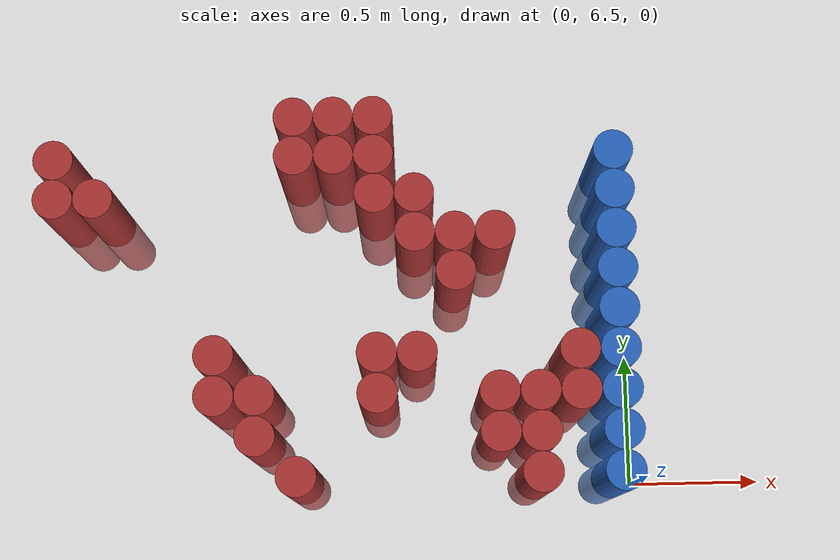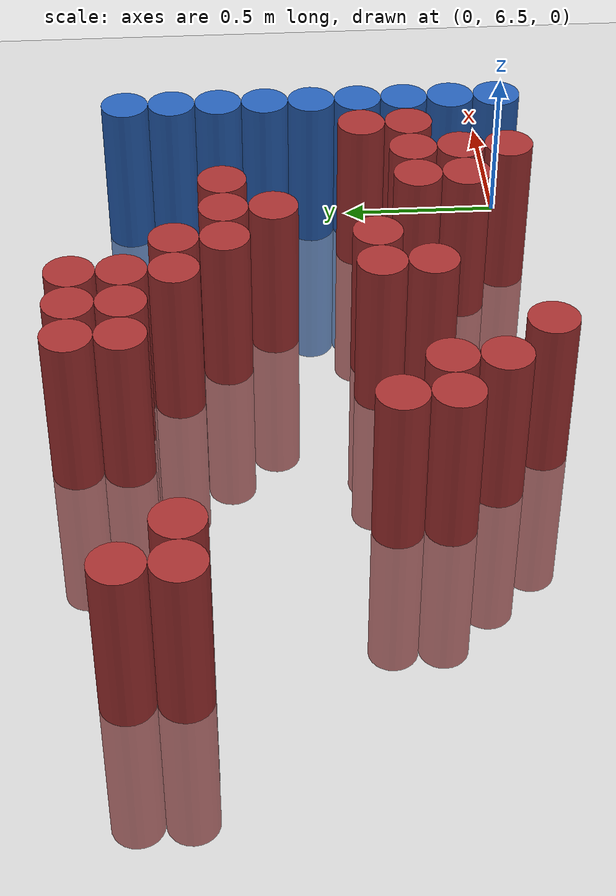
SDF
<sdf version="1.6">
 <world name="default">
  <model name="ground_plane">
   <static>1</static>
   <link name="link">
    <collision name="collision">
     <geometry><plane><normal>0 0 1</normal><size>100 100</size></plane></geometry>
     <surface><friction><ode><mu>100</mu><mu2>50</mu2></ode></friction></surface>
    </collision>
    <visual name="visual">
     <cast_shadows>0</cast_shadows>
     <geometry><plane><normal>0 0 1</normal><size>100 100</size></plane></geometry>
     <material>
      <script><uri>file://media/materials/scripts/gazebo.material</uri><name>Gazebo/Grey</name></script>
     </material>
    </visual>
   </link>
  </model>
  <model name="unit_cylinder_209">
   <static>1</static>
   <pose>-2.175000 7.575000 0.000000 0.000000 0.000000 0.000000</pose>
   <link name="link">
    <inertial>
     <mass>1</mass>
     <inertia><ixx>0.145833</ixx><ixy>0</ixy><ixz>0</ixz><iyy>0.145833</iyy><iyz>0</iyz><izz>0.125</izz></inertia>
    </inertial>
    <collision name="collision">
     <geometry><cylinder><radius>0.075000</radius><length>1</length></cylinder></geometry>
    </collision>
    <visual name="visual">
     <geometry><cylinder><radius>0.075000</radius><length>1</length></cylinder></geometry>
     <material>
      <ambient>0.648000 0.192000 0.192000 1</ambient>
      <diffuse>0.648000 0.192000 0.192000 1</diffuse>
     </material>
     <material>
      <script><name>Gazebo/Grey</name><uri>file://media/materials/scripts/gazebo.material</uri></script>
     </material>
    </visual>
    <sensor name="sensor_contact" type="contact"><contact><collision>collision</collision></contact></sensor>
   </link>
   <plugin filename="gz-sim-touchplugin-system" name="gz::sim::systems::TouchPlugin">
    <target>robot</target>
    <namespace>robot</namespace>
    <time>0.001</time>
    <enabled>true</enabled>
   </plugin>
  </model>
  <model name="unit_cylinder_210">
   <static>1</static>
   <pose>-2.175000 7.725000 0.000000 0.000000 0.000000 0.000000</pose>
   <link name="link">
    <inertial>
     <mass>1</mass>
     <inertia><ixx>0.145833</ixx><ixy>0</ixy><ixz>0</ixz><iyy>0.145833</iyy><iyz>0</iyz><izz>0.125</izz></inertia>
    </inertial>
    <collision name="collision">
     <geometry><cylinder><radius>0.075000</radius><length>1</length></cylinder></geometry>
    </collision>
    <visual name="visual">
     <geometry><cylinder><radius>0.075000</radius><length>1</length></cylinder></geometry>
     <material>
      <ambient>0.648000 0.192000 0.192000 1</ambient>
      <diffuse>0.648000 0.192000 0.192000 1</diffuse>
     </material>
     <material>
      <script><name>Gazebo/Grey</name><uri>file://media/materials/scripts/gazebo.material</uri></script>
     </material>
    </visual>
    <sensor name="sensor_contact" type="contact"><contact><collision>collision</collision></contact></sensor>
   </link>
   <plugin filename="gz-sim-touchplugin-system" name="gz::sim::systems::TouchPlugin">
    <target>robot</target>
    <namespace>robot</namespace>
    <time>0.001</time>
    <enabled>true</enabled>
   </plugin>
  </model>
  <model name="unit_cylinder_220">
   <static>1</static>
   <pose>-2.025000 7.575000 0.000000 0.000000 0.000000 0.000000</pose>
   <link name="link">
    <inertial>
     <mass>1</mass>
     <inertia><ixx>0.145833</ixx><ixy>0</ixy><ixz>0</ixz><iyy>0.145833</iyy><iyz>0</iyz><izz>0.125</izz></inertia>
    </inertial>
    <collision name="collision">
     <geometry><cylinder><radius>0.075000</radius><length>1</length></cylinder></geometry>
    </collision>
    <visual name="visual">
     <geometry><cylinder><radius>0.075000</radius><length>1</length></cylinder></geometry>
     <material>
      <ambient>0.648000 0.192000 0.192000 1</ambient>
      <diffuse>0.648000 0.192000 0.192000 1</diffuse>
     </material>
     <material>
      <script><name>Gazebo/Grey</name><uri>file://media/materials/scripts/gazebo.material</uri></script>
     </material>
    </visual>
    <sensor name="sensor_contact" type="contact"><contact><collision>collision</collision></contact></sensor>
   </link>
   <plugin filename="gz-sim-touchplugin-system" name="gz::sim::systems::TouchPlugin">
    <target>robot</target>
    <namespace>robot</namespace>
    <time>0.001</time>
    <enabled>true</enabled>
   </plugin>
  </model>
  <model name="unit_cylinder_223">
   <static>1</static>
   <pose>-1.575000 6.825000 0.000000 0.000000 0.000000 0.000000</pose>
   <link name="link">
    <inertial>
     <mass>1</mass>
     <inertia><ixx>0.145833</ixx><ixy>0</ixy><ixz>0</ixz><iyy>0.145833</iyy><iyz>0</iyz><izz>0.125</izz></inertia>
    </inertial>
    <collision name="collision">
     <geometry><cylinder><radius>0.075000</radius><length>1</length></cylinder></geometry>
    </collision>
    <visual name="visual">
     <geometry><cylinder><radius>0.075000</radius><length>1</length></cylinder></geometry>
     <material>
      <ambient>0.648000 0.192000 0.192000 1</ambient>
      <diffuse>0.648000 0.192000 0.192000 1</diffuse>
     </material>
     <material>
      <script><name>Gazebo/Grey</name><uri>file://media/materials/scripts/gazebo.material</uri></script>
     </material>
    </visual>
    <sensor name="sensor_contact" type="contact"><contact><collision>collision</collision></contact></sensor>
   </link>
   <plugin filename="gz-sim-touchplugin-system" name="gz::sim::systems::TouchPlugin">
    <target>robot</target>
    <namespace>robot</namespace>
    <time>0.001</time>
    <enabled>true</enabled>
   </plugin>
  </model>
  <model name="unit_cylinder_224">
   <static>1</static>
   <pose>-1.575000 6.975000 0.000000 0.000000 0.000000 0.000000</pose>
   <link name="link">
    <inertial>
     <mass>1</mass>
     <inertia><ixx>0.145833</ixx><ixy>0</ixy><ixz>0</ixz><iyy>0.145833</iyy><iyz>0</iyz><izz>0.125</izz></inertia>
    </inertial>
    <collision name="collision">
     <geometry><cylinder><radius>0.075000</radius><length>1</length></cylinder></geometry>
    </collision>
    <visual name="visual">
     <geometry><cylinder><radius>0.075000</radius><length>1</length></cylinder></geometry>
     <material>
      <ambient>0.648000 0.192000 0.192000 1</ambient>
      <diffuse>0.648000 0.192000 0.192000 1</diffuse>
     </material>
     <material>
      <script><name>Gazebo/Grey</name><uri>file://media/materials/scripts/gazebo.material</uri></script>
     </material>
    </visual>
    <sensor name="sensor_contact" type="contact"><contact><collision>collision</collision></contact></sensor>
   </link>
   <plugin filename="gz-sim-touchplugin-system" name="gz::sim::systems::TouchPlugin">
    <target>robot</target>
    <namespace>robot</namespace>
    <time>0.001</time>
    <enabled>true</enabled>
   </plugin>
  </model>
  <model name="unit_cylinder_227">
   <static>1</static>
   <pose>-1.425000 6.675000 0.000000 0.000000 0.000000 0.000000</pose>
   <link name="link">
    <inertial>
     <mass>1</mass>
     <inertia><ixx>0.145833</ixx><ixy>0</ixy><ixz>0</ixz><iyy>0.145833</iyy><iyz>0</iyz><izz>0.125</izz></inertia>
    </inertial>
    <collision name="collision">
     <geometry><cylinder><radius>0.075000</radius><length>1</length></cylinder></geometry>
    </collision>
    <visual name="visual">
     <geometry><cylinder><radius>0.075000</radius><length>1</length></cylinder></geometry>
     <material>
      <ambient>0.648000 0.192000 0.192000 1</ambient>
      <diffuse>0.648000 0.192000 0.192000 1</diffuse>
     </material>
     <material>
      <script><name>Gazebo/Grey</name><uri>file://media/materials/scripts/gazebo.material</uri></script>
     </material>
    </visual>
    <sensor name="sensor_contact" type="contact"><contact><collision>collision</collision></contact></sensor>
   </link>
   <plugin filename="gz-sim-touchplugin-system" name="gz::sim::systems::TouchPlugin">
    <target>robot</target>
    <namespace>robot</namespace>
    <time>0.001</time>
    <enabled>true</enabled>
   </plugin>
  </model>
  <model name="unit_cylinder_228">
   <static>1</static>
   <pose>-1.425000 6.825000 0.000000 0.000000 0.000000 0.000000</pose>
   <link name="link">
    <inertial>
     <mass>1</mass>
     <inertia><ixx>0.145833</ixx><ixy>0</ixy><ixz>0</ixz><iyy>0.145833</iyy><iyz>0</iyz><izz>0.125</izz></inertia>
    </inertial>
    <collision name="collision">
     <geometry><cylinder><radius>0.075000</radius><length>1</length></cylinder></geometry>
    </collision>
    <visual name="visual">
     <geometry><cylinder><radius>0.075000</radius><length>1</length></cylinder></geometry>
     <material>
      <ambient>0.648000 0.192000 0.192000 1</ambient>
      <diffuse>0.648000 0.192000 0.192000 1</diffuse>
     </material>
     <material>
      <script><name>Gazebo/Grey</name><uri>file://media/materials/scripts/gazebo.material</uri></script>
     </material>
    </visual>
    <sensor name="sensor_contact" type="contact"><contact><collision>collision</collision></contact></sensor>
   </link>
   <plugin filename="gz-sim-touchplugin-system" name="gz::sim::systems::TouchPlugin">
    <target>robot</target>
    <namespace>robot</namespace>
    <time>0.001</time>
    <enabled>true</enabled>
   </plugin>
  </model>
  <model name="unit_cylinder_232">
   <static>1</static>
   <pose>-1.275000 6.525000 0.000000 0.000000 0.000000 0.000000</pose>
   <link name="link">
    <inertial>
     <mass>1</mass>
     <inertia><ixx>0.145833</ixx><ixy>0</ixy><ixz>0</ixz><iyy>0.145833</iyy><iyz>0</iyz><izz>0.125</izz></inertia>
    </inertial>
    <collision name="collision">
     <geometry><cylinder><radius>0.075000</radius><length>1</length></cylinder></geometry>
    </collision>
    <visual name="visual">
     <geometry><cylinder><radius>0.075000</radius><length>1</length></cylinder></geometry>
     <material>
      <ambient>0.648000 0.192000 0.192000 1</ambient>
      <diffuse>0.648000 0.192000 0.192000 1</diffuse>
     </material>
     <material>
      <script><name>Gazebo/Grey</name><uri>file://media/materials/scripts/gazebo.material</uri></script>
     </material>
    </visual>
    <sensor name="sensor_contact" type="contact"><contact><collision>collision</collision></contact></sensor>
   </link>
   <plugin filename="gz-sim-touchplugin-system" name="gz::sim::systems::TouchPlugin">
    <target>robot</target>
    <namespace>robot</namespace>
    <time>0.001</time>
    <enabled>true</enabled>
   </plugin>
  </model>
  <model name="unit_cylinder_233">
   <static>1</static>
   <pose>-1.275000 7.725000 0.000000 0.000000 0.000000 0.000000</pose>
   <link name="link">
    <inertial>
     <mass>1</mass>
     <inertia><ixx>0.145833</ixx><ixy>0</ixy><ixz>0</ixz><iyy>0.145833</iyy><iyz>0</iyz><izz>0.125</izz></inertia>
    </inertial>
    <collision name="collision">
     <geometry><cylinder><radius>0.075000</radius><length>1</length></cylinder></geometry>
    </collision>
    <visual name="visual">
     <geometry><cylinder><radius>0.075000</radius><length>1</length></cylinder></geometry>
     <material>
      <ambient>0.648000 0.192000 0.192000 1</ambient>
      <diffuse>0.648000 0.192000 0.192000 1</diffuse>
     </material>
     <material>
      <script><name>Gazebo/Grey</name><uri>file://media/materials/scripts/gazebo.material</uri></script>
     </material>
    </visual>
    <sensor name="sensor_contact" type="contact"><contact><collision>collision</collision></contact></sensor>
   </link>
   <plugin filename="gz-sim-touchplugin-system" name="gz::sim::systems::TouchPlugin">
    <target>robot</target>
    <namespace>robot</namespace>
    <time>0.001</time>
    <enabled>true</enabled>
   </plugin>
  </model>
  <model name="unit_cylinder_234">
   <static>1</static>
   <pose>-1.275000 7.875000 0.000000 0.000000 0.000000 0.000000</pose>
   <link name="link">
    <inertial>
     <mass>1</mass>
     <inertia><ixx>0.145833</ixx><ixy>0</ixy><ixz>0</ixz><iyy>0.145833</iyy><iyz>0</iyz><izz>0.125</izz></inertia>
    </inertial>
    <collision name="collision">
     <geometry><cylinder><radius>0.075000</radius><length>1</length></cylinder></geometry>
    </collision>
    <visual name="visual">
     <geometry><cylinder><radius>0.075000</radius><length>1</length></cylinder></geometry>
     <material>
      <ambient>0.648000 0.192000 0.192000 1</ambient>
      <diffuse>0.648000 0.192000 0.192000 1</diffuse>
     </material>
     <material>
      <script><name>Gazebo/Grey</name><uri>file://media/materials/scripts/gazebo.material</uri></script>
     </material>
    </visual>
    <sensor name="sensor_contact" type="contact"><contact><collision>collision</collision></contact></sensor>
   </link>
   <plugin filename="gz-sim-touchplugin-system" name="gz::sim::systems::TouchPlugin">
    <target>robot</target>
    <namespace>robot</namespace>
    <time>0.001</time>
    <enabled>true</enabled>
   </plugin>
  </model>
  <model name="unit_cylinder_242">
   <static>1</static>
   <pose>-1.125000 7.725000 0.000000 0.000000 0.000000 0.000000</pose>
   <link name="link">
    <inertial>
     <mass>1</mass>
     <inertia><ixx>0.145833</ixx><ixy>0</ixy><ixz>0</ixz><iyy>0.145833</iyy><iyz>0</iyz><izz>0.125</izz></inertia>
    </inertial>
    <collision name="collision">
     <geometry><cylinder><radius>0.075000</radius><length>1</length></cylinder></geometry>
    </collision>
    <visual name="visual">
     <geometry><cylinder><radius>0.075000</radius><length>1</length></cylinder></geometry>
     <material>
      <ambient>0.648000 0.192000 0.192000 1</ambient>
      <diffuse>0.648000 0.192000 0.192000 1</diffuse>
     </material>
     <material>
      <script><name>Gazebo/Grey</name><uri>file://media/materials/scripts/gazebo.material</uri></script>
     </material>
    </visual>
    <sensor name="sensor_contact" type="contact"><contact><collision>collision</collision></contact></sensor>
   </link>
   <plugin filename="gz-sim-touchplugin-system" name="gz::sim::systems::TouchPlugin">
    <target>robot</target>
    <namespace>robot</namespace>
    <time>0.001</time>
    <enabled>true</enabled>
   </plugin>
  </model>
  <model name="unit_cylinder_243">
   <static>1</static>
   <pose>-1.125000 7.875000 0.000000 0.000000 0.000000 0.000000</pose>
   <link name="link">
    <inertial>
     <mass>1</mass>
     <inertia><ixx>0.145833</ixx><ixy>0</ixy><ixz>0</ixz><iyy>0.145833</iyy><iyz>0</iyz><izz>0.125</izz></inertia>
    </inertial>
    <collision name="collision">
     <geometry><cylinder><radius>0.075000</radius><length>1</length></cylinder></geometry>
    </collision>
    <visual name="visual">
     <geometry><cylinder><radius>0.075000</radius><length>1</length></cylinder></geometry>
     <material>
      <ambient>0.648000 0.192000 0.192000 1</ambient>
      <diffuse>0.648000 0.192000 0.192000 1</diffuse>
     </material>
     <material>
      <script><name>Gazebo/Grey</name><uri>file://media/materials/scripts/gazebo.material</uri></script>
     </material>
    </visual>
    <sensor name="sensor_contact" type="contact"><contact><collision>collision</collision></contact></sensor>
   </link>
   <plugin filename="gz-sim-touchplugin-system" name="gz::sim::systems::TouchPlugin">
    <target>robot</target>
    <namespace>robot</namespace>
    <time>0.001</time>
    <enabled>true</enabled>
   </plugin>
  </model>
  <model name="unit_cylinder_247">
   <static>1</static>
   <pose>-0.975000 6.825000 0.000000 0.000000 0.000000 0.000000</pose>
   <link name="link">
    <inertial>
     <mass>1</mass>
     <inertia><ixx>0.145833</ixx><ixy>0</ixy><ixz>0</ixz><iyy>0.145833</iyy><iyz>0</iyz><izz>0.125</izz></inertia>
    </inertial>
    <collision name="collision">
     <geometry><cylinder><radius>0.075000</radius><length>1</length></cylinder></geometry>
    </collision>
    <visual name="visual">
     <geometry><cylinder><radius>0.075000</radius><length>1</length></cylinder></geometry>
     <material>
      <ambient>0.648000 0.192000 0.192000 1</ambient>
      <diffuse>0.648000 0.192000 0.192000 1</diffuse>
     </material>
     <material>
      <script><name>Gazebo/Grey</name><uri>file://media/materials/scripts/gazebo.material</uri></script>
     </material>
    </visual>
    <sensor name="sensor_contact" type="contact"><contact><collision>collision</collision></contact></sensor>
   </link>
   <plugin filename="gz-sim-touchplugin-system" name="gz::sim::systems::TouchPlugin">
    <target>robot</target>
    <namespace>robot</namespace>
    <time>0.001</time>
    <enabled>true</enabled>
   </plugin>
  </model>
  <model name="unit_cylinder_248">
   <static>1</static>
   <pose>-0.975000 6.975000 0.000000 0.000000 0.000000 0.000000</pose>
   <link name="link">
    <inertial>
     <mass>1</mass>
     <inertia><ixx>0.145833</ixx><ixy>0</ixy><ixz>0</ixz><iyy>0.145833</iyy><iyz>0</iyz><izz>0.125</izz></inertia>
    </inertial>
    <collision name="collision">
     <geometry><cylinder><radius>0.075000</radius><length>1</length></cylinder></geometry>
    </collision>
    <visual name="visual">
     <geometry><cylinder><radius>0.075000</radius><length>1</length></cylinder></geometry>
     <material>
      <ambient>0.648000 0.192000 0.192000 1</ambient>
      <diffuse>0.648000 0.192000 0.192000 1</diffuse>
     </material>
     <material>
      <script><name>Gazebo/Grey</name><uri>file://media/materials/scripts/gazebo.material</uri></script>
     </material>
    </visual>
    <sensor name="sensor_contact" type="contact"><contact><collision>collision</collision></contact></sensor>
   </link>
   <plugin filename="gz-sim-touchplugin-system" name="gz::sim::systems::TouchPlugin">
    <target>robot</target>
    <namespace>robot</namespace>
    <time>0.001</time>
    <enabled>true</enabled>
   </plugin>
  </model>
  <model name="unit_cylinder_249">
   <static>1</static>
   <pose>-0.975000 7.575000 0.000000 0.000000 0.000000 0.000000</pose>
   <link name="link">
    <inertial>
     <mass>1</mass>
     <inertia><ixx>0.145833</ixx><ixy>0</ixy><ixz>0</ixz><iyy>0.145833</iyy><iyz>0</iyz><izz>0.125</izz></inertia>
    </inertial>
    <collision name="collision">
     <geometry><cylinder><radius>0.075000</radius><length>1</length></cylinder></geometry>
    </collision>
    <visual name="visual">
     <geometry><cylinder><radius>0.075000</radius><length>1</length></cylinder></geometry>
     <material>
      <ambient>0.648000 0.192000 0.192000 1</ambient>
      <diffuse>0.648000 0.192000 0.192000 1</diffuse>
     </material>
     <material>
      <script><name>Gazebo/Grey</name><uri>file://media/materials/scripts/gazebo.material</uri></script>
     </material>
    </visual>
    <sensor name="sensor_contact" type="contact"><contact><collision>collision</collision></contact></sensor>
   </link>
   <plugin filename="gz-sim-touchplugin-system" name="gz::sim::systems::TouchPlugin">
    <target>robot</target>
    <namespace>robot</namespace>
    <time>0.001</time>
    <enabled>true</enabled>
   </plugin>
  </model>
  <model name="unit_cylinder_250">
   <static>1</static>
   <pose>-0.975000 7.725000 0.000000 0.000000 0.000000 0.000000</pose>
   <link name="link">
    <inertial>
     <mass>1</mass>
     <inertia><ixx>0.145833</ixx><ixy>0</ixy><ixz>0</ixz><iyy>0.145833</iyy><iyz>0</iyz><izz>0.125</izz></inertia>
    </inertial>
    <collision name="collision">
     <geometry><cylinder><radius>0.075000</radius><length>1</length></cylinder></geometry>
    </collision>
    <visual name="visual">
     <geometry><cylinder><radius>0.075000</radius><length>1</length></cylinder></geometry>
     <material>
      <ambient>0.648000 0.192000 0.192000 1</ambient>
      <diffuse>0.648000 0.192000 0.192000 1</diffuse>
     </material>
     <material>
      <script><name>Gazebo/Grey</name><uri>file://media/materials/scripts/gazebo.material</uri></script>
     </material>
    </visual>
    <sensor name="sensor_contact" type="contact"><contact><collision>collision</collision></contact></sensor>
   </link>
   <plugin filename="gz-sim-touchplugin-system" name="gz::sim::systems::TouchPlugin">
    <target>robot</target>
    <namespace>robot</namespace>
    <time>0.001</time>
    <enabled>true</enabled>
   </plugin>
  </model>
  <model name="unit_cylinder_251">
   <static>1</static>
   <pose>-0.975000 7.875000 0.000000 0.000000 0.000000 0.000000</pose>
   <link name="link">
    <inertial>
     <mass>1</mass>
     <inertia><ixx>0.145833</ixx><ixy>0</ixy><ixz>0</ixz><iyy>0.145833</iyy><iyz>0</iyz><izz>0.125</izz></inertia>
    </inertial>
    <collision name="collision">
     <geometry><cylinder><radius>0.075000</radius><length>1</length></cylinder></geometry>
    </collision>
    <visual name="visual">
     <geometry><cylinder><radius>0.075000</radius><length>1</length></cylinder></geometry>
     <material>
      <ambient>0.648000 0.192000 0.192000 1</ambient>
      <diffuse>0.648000 0.192000 0.192000 1</diffuse>
     </material>
     <material>
      <script><name>Gazebo/Grey</name><uri>file://media/materials/scripts/gazebo.material</uri></script>
     </material>
    </visual>
    <sensor name="sensor_contact" type="contact"><contact><collision>collision</collision></contact></sensor>
   </link>
   <plugin filename="gz-sim-touchplugin-system" name="gz::sim::systems::TouchPlugin">
    <target>robot</target>
    <namespace>robot</namespace>
    <time>0.001</time>
    <enabled>true</enabled>
   </plugin>
  </model>
  <model name="unit_cylinder_252">
   <static>1</static>
   <pose>-0.825000 6.975000 0.000000 0.000000 0.000000 0.000000</pose>
   <link name="link">
    <inertial>
     <mass>1</mass>
     <inertia><ixx>0.145833</ixx><ixy>0</ixy><ixz>0</ixz><iyy>0.145833</iyy><iyz>0</iyz><izz>0.125</izz></inertia>
    </inertial>
    <collision name="collision">
     <geometry><cylinder><radius>0.075000</radius><length>1</length></cylinder></geometry>
    </collision>
    <visual name="visual">
     <geometry><cylinder><radius>0.075000</radius><length>1</length></cylinder></geometry>
     <material>
      <ambient>0.648000 0.192000 0.192000 1</ambient>
      <diffuse>0.648000 0.192000 0.192000 1</diffuse>
     </material>
     <material>
      <script><name>Gazebo/Grey</name><uri>file://media/materials/scripts/gazebo.material</uri></script>
     </material>
    </visual>
    <sensor name="sensor_contact" type="contact"><contact><collision>collision</collision></contact></sensor>
   </link>
   <plugin filename="gz-sim-touchplugin-system" name="gz::sim::systems::TouchPlugin">
    <target>robot</target>
    <namespace>robot</namespace>
    <time>0.001</time>
    <enabled>true</enabled>
   </plugin>
  </model>
  <model name="unit_cylinder_253">
   <static>1</static>
   <pose>-0.825000 7.425000 0.000000 0.000000 0.000000 0.000000</pose>
   <link name="link">
    <inertial>
     <mass>1</mass>
     <inertia><ixx>0.145833</ixx><ixy>0</ixy><ixz>0</ixz><iyy>0.145833</iyy><iyz>0</iyz><izz>0.125</izz></inertia>
    </inertial>
    <collision name="collision">
     <geometry><cylinder><radius>0.075000</radius><length>1</length></cylinder></geometry>
    </collision>
    <visual name="visual">
     <geometry><cylinder><radius>0.075000</radius><length>1</length></cylinder></geometry>
     <material>
      <ambient>0.648000 0.192000 0.192000 1</ambient>
      <diffuse>0.648000 0.192000 0.192000 1</diffuse>
     </material>
     <material>
      <script><name>Gazebo/Grey</name><uri>file://media/materials/scripts/gazebo.material</uri></script>
     </material>
    </visual>
    <sensor name="sensor_contact" type="contact"><contact><collision>collision</collision></contact></sensor>
   </link>
   <plugin filename="gz-sim-touchplugin-system" name="gz::sim::systems::TouchPlugin">
    <target>robot</target>
    <namespace>robot</namespace>
    <time>0.001</time>
    <enabled>true</enabled>
   </plugin>
  </model>
  <model name="unit_cylinder_254">
   <static>1</static>
   <pose>-0.825000 7.575000 0.000000 0.000000 0.000000 0.000000</pose>
   <link name="link">
    <inertial>
     <mass>1</mass>
     <inertia><ixx>0.145833</ixx><ixy>0</ixy><ixz>0</ixz><iyy>0.145833</iyy><iyz>0</iyz><izz>0.125</izz></inertia>
    </inertial>
    <collision name="collision">
     <geometry><cylinder><radius>0.075000</radius><length>1</length></cylinder></geometry>
    </collision>
    <visual name="visual">
     <geometry><cylinder><radius>0.075000</radius><length>1</length></cylinder></geometry>
     <material>
      <ambient>0.648000 0.192000 0.192000 1</ambient>
      <diffuse>0.648000 0.192000 0.192000 1</diffuse>
     </material>
     <material>
      <script><name>Gazebo/Grey</name><uri>file://media/materials/scripts/gazebo.material</uri></script>
     </material>
    </visual>
    <sensor name="sensor_contact" type="contact"><contact><collision>collision</collision></contact></sensor>
   </link>
   <plugin filename="gz-sim-touchplugin-system" name="gz::sim::systems::TouchPlugin">
    <target>robot</target>
    <namespace>robot</namespace>
    <time>0.001</time>
    <enabled>true</enabled>
   </plugin>
  </model>
  <model name="unit_cylinder_255">
   <static>1</static>
   <pose>-0.675000 7.275000 0.000000 0.000000 0.000000 0.000000</pose>
   <link name="link">
    <inertial>
     <mass>1</mass>
     <inertia><ixx>0.145833</ixx><ixy>0</ixy><ixz>0</ixz><iyy>0.145833</iyy><iyz>0</iyz><izz>0.125</izz></inertia>
    </inertial>
    <collision name="collision">
     <geometry><cylinder><radius>0.075000</radius><length>1</length></cylinder></geometry>
    </collision>
    <visual name="visual">
     <geometry><cylinder><radius>0.075000</radius><length>1</length></cylinder></geometry>
     <material>
      <ambient>0.648000 0.192000 0.192000 1</ambient>
      <diffuse>0.648000 0.192000 0.192000 1</diffuse>
     </material>
     <material>
      <script><name>Gazebo/Grey</name><uri>file://media/materials/scripts/gazebo.material</uri></script>
     </material>
    </visual>
    <sensor name="sensor_contact" type="contact"><contact><collision>collision</collision></contact></sensor>
   </link>
   <plugin filename="gz-sim-touchplugin-system" name="gz::sim::systems::TouchPlugin">
    <target>robot</target>
    <namespace>robot</namespace>
    <time>0.001</time>
    <enabled>true</enabled>
   </plugin>
  </model>
  <model name="unit_cylinder_256">
   <static>1</static>
   <pose>-0.675000 7.425000 0.000000 0.000000 0.000000 0.000000</pose>
   <link name="link">
    <inertial>
     <mass>1</mass>
     <inertia><ixx>0.145833</ixx><ixy>0</ixy><ixz>0</ixz><iyy>0.145833</iyy><iyz>0</iyz><izz>0.125</izz></inertia>
    </inertial>
    <collision name="collision">
     <geometry><cylinder><radius>0.075000</radius><length>1</length></cylinder></geometry>
    </collision>
    <visual name="visual">
     <geometry><cylinder><radius>0.075000</radius><length>1</length></cylinder></geometry>
     <material>
      <ambient>0.648000 0.192000 0.192000 1</ambient>
      <diffuse>0.648000 0.192000 0.192000 1</diffuse>
     </material>
     <material>
      <script><name>Gazebo/Grey</name><uri>file://media/materials/scripts/gazebo.material</uri></script>
     </material>
    </visual>
    <sensor name="sensor_contact" type="contact"><contact><collision>collision</collision></contact></sensor>
   </link>
   <plugin filename="gz-sim-touchplugin-system" name="gz::sim::systems::TouchPlugin">
    <target>robot</target>
    <namespace>robot</namespace>
    <time>0.001</time>
    <enabled>true</enabled>
   </plugin>
  </model>
  <model name="unit_cylinder_261">
   <static>1</static>
   <pose>-0.525000 6.675000 0.000000 0.000000 0.000000 0.000000</pose>
   <link name="link">
    <inertial>
     <mass>1</mass>
     <inertia><ixx>0.145833</ixx><ixy>0</ixy><ixz>0</ixz><iyy>0.145833</iyy><iyz>0</iyz><izz>0.125</izz></inertia>
    </inertial>
    <collision name="collision">
     <geometry><cylinder><radius>0.075000</radius><length>1</length></cylinder></geometry>
    </collision>
    <visual name="visual">
     <geometry><cylinder><radius>0.075000</radius><length>1</length></cylinder></geometry>
     <material>
      <ambient>0.648000 0.192000 0.192000 1</ambient>
      <diffuse>0.648000 0.192000 0.192000 1</diffuse>
     </material>
     <material>
      <script><name>Gazebo/Grey</name><uri>file://media/materials/scripts/gazebo.material</uri></script>
     </material>
    </visual>
    <sensor name="sensor_contact" type="contact"><contact><collision>collision</collision></contact></sensor>
   </link>
   <plugin filename="gz-sim-touchplugin-system" name="gz::sim::systems::TouchPlugin">
    <target>robot</target>
    <namespace>robot</namespace>
    <time>0.001</time>
    <enabled>true</enabled>
   </plugin>
  </model>
  <model name="unit_cylinder_262">
   <static>1</static>
   <pose>-0.525000 6.825000 0.000000 0.000000 0.000000 0.000000</pose>
   <link name="link">
    <inertial>
     <mass>1</mass>
     <inertia><ixx>0.145833</ixx><ixy>0</ixy><ixz>0</ixz><iyy>0.145833</iyy><iyz>0</iyz><izz>0.125</izz></inertia>
    </inertial>
    <collision name="collision">
     <geometry><cylinder><radius>0.075000</radius><length>1</length></cylinder></geometry>
    </collision>
    <visual name="visual">
     <geometry><cylinder><radius>0.075000</radius><length>1</length></cylinder></geometry>
     <material>
      <ambient>0.648000 0.192000 0.192000 1</ambient>
      <diffuse>0.648000 0.192000 0.192000 1</diffuse>
     </material>
     <material>
      <script><name>Gazebo/Grey</name><uri>file://media/materials/scripts/gazebo.material</uri></script>
     </material>
    </visual>
    <sensor name="sensor_contact" type="contact"><contact><collision>collision</collision></contact></sensor>
   </link>
   <plugin filename="gz-sim-touchplugin-system" name="gz::sim::systems::TouchPlugin">
    <target>robot</target>
    <namespace>robot</namespace>
    <time>0.001</time>
    <enabled>true</enabled>
   </plugin>
  </model>
  <model name="unit_cylinder_263">
   <static>1</static>
   <pose>-0.525000 7.425000 0.000000 0.000000 0.000000 0.000000</pose>
   <link name="link">
    <inertial>
     <mass>1</mass>
     <inertia><ixx>0.145833</ixx><ixy>0</ixy><ixz>0</ixz><iyy>0.145833</iyy><iyz>0</iyz><izz>0.125</izz></inertia>
    </inertial>
    <collision name="collision">
     <geometry><cylinder><radius>0.075000</radius><length>1</length></cylinder></geometry>
    </collision>
    <visual name="visual">
     <geometry><cylinder><radius>0.075000</radius><length>1</length></cylinder></geometry>
     <material>
      <ambient>0.648000 0.192000 0.192000 1</ambient>
      <diffuse>0.648000 0.192000 0.192000 1</diffuse>
     </material>
     <material>
      <script><name>Gazebo/Grey</name><uri>file://media/materials/scripts/gazebo.material</uri></script>
     </material>
    </visual>
    <sensor name="sensor_contact" type="contact"><contact><collision>collision</collision></contact></sensor>
   </link>
   <plugin filename="gz-sim-touchplugin-system" name="gz::sim::systems::TouchPlugin">
    <target>robot</target>
    <namespace>robot</namespace>
    <time>0.001</time>
    <enabled>true</enabled>
   </plugin>
  </model>
  <model name="unit_cylinder_270">
   <static>1</static>
   <pose>-0.375000 6.525000 0.000000 0.000000 0.000000 0.000000</pose>
   <link name="link">
    <inertial>
     <mass>1</mass>
     <inertia><ixx>0.145833</ixx><ixy>0</ixy><ixz>0</ixz><iyy>0.145833</iyy><iyz>0</iyz><izz>0.125</izz></inertia>
    </inertial>
    <collision name="collision">
     <geometry><cylinder><radius>0.075000</radius><length>1</length></cylinder></geometry>
    </collision>
    <visual name="visual">
     <geometry><cylinder><radius>0.075000</radius><length>1</length></cylinder></geometry>
     <material>
      <ambient>0.648000 0.192000 0.192000 1</ambient>
      <diffuse>0.648000 0.192000 0.192000 1</diffuse>
     </material>
     <material>
      <script><name>Gazebo/Grey</name><uri>file://media/materials/scripts/gazebo.material</uri></script>
     </material>
    </visual>
    <sensor name="sensor_contact" type="contact"><contact><collision>collision</collision></contact></sensor>
   </link>
   <plugin filename="gz-sim-touchplugin-system" name="gz::sim::systems::TouchPlugin">
    <target>robot</target>
    <namespace>robot</namespace>
    <time>0.001</time>
    <enabled>true</enabled>
   </plugin>
  </model>
  <model name="unit_cylinder_271">
   <static>1</static>
   <pose>-0.375000 6.675000 0.000000 0.000000 0.000000 0.000000</pose>
   <link name="link">
    <inertial>
     <mass>1</mass>
     <inertia><ixx>0.145833</ixx><ixy>0</ixy><ixz>0</ixz><iyy>0.145833</iyy><iyz>0</iyz><izz>0.125</izz></inertia>
    </inertial>
    <collision name="collision">
     <geometry><cylinder><radius>0.075000</radius><length>1</length></cylinder></geometry>
    </collision>
    <visual name="visual">
     <geometry><cylinder><radius>0.075000</radius><length>1</length></cylinder></geometry>
     <material>
      <ambient>0.648000 0.192000 0.192000 1</ambient>
      <diffuse>0.648000 0.192000 0.192000 1</diffuse>
     </material>
     <material>
      <script><name>Gazebo/Grey</name><uri>file://media/materials/scripts/gazebo.material</uri></script>
     </material>
    </visual>
    <sensor name="sensor_contact" type="contact"><contact><collision>collision</collision></contact></sensor>
   </link>
   <plugin filename="gz-sim-touchplugin-system" name="gz::sim::systems::TouchPlugin">
    <target>robot</target>
    <namespace>robot</namespace>
    <time>0.001</time>
    <enabled>true</enabled>
   </plugin>
  </model>
  <model name="unit_cylinder_272">
   <static>1</static>
   <pose>-0.375000 6.825000 0.000000 0.000000 0.000000 0.000000</pose>
   <link name="link">
    <inertial>
     <mass>1</mass>
     <inertia><ixx>0.145833</ixx><ixy>0</ixy><ixz>0</ixz><iyy>0.145833</iyy><iyz>0</iyz><izz>0.125</izz></inertia>
    </inertial>
    <collision name="collision">
     <geometry><cylinder><radius>0.075000</radius><length>1</length></cylinder></geometry>
    </collision>
    <visual name="visual">
     <geometry><cylinder><radius>0.075000</radius><length>1</length></cylinder></geometry>
     <material>
      <ambient>0.648000 0.192000 0.192000 1</ambient>
      <diffuse>0.648000 0.192000 0.192000 1</diffuse>
     </material>
     <material>
      <script><name>Gazebo/Grey</name><uri>file://media/materials/scripts/gazebo.material</uri></script>
     </material>
    </visual>
    <sensor name="sensor_contact" type="contact"><contact><collision>collision</collision></contact></sensor>
   </link>
   <plugin filename="gz-sim-touchplugin-system" name="gz::sim::systems::TouchPlugin">
    <target>robot</target>
    <namespace>robot</namespace>
    <time>0.001</time>
    <enabled>true</enabled>
   </plugin>
  </model>
  <model name="unit_cylinder_278">
   <static>1</static>
   <pose>-0.225000 6.825000 0.000000 0.000000 0.000000 0.000000</pose>
   <link name="link">
    <inertial>
     <mass>1</mass>
     <inertia><ixx>0.145833</ixx><ixy>0</ixy><ixz>0</ixz><iyy>0.145833</iyy><iyz>0</iyz><izz>0.125</izz></inertia>
    </inertial>
    <collision name="collision">
     <geometry><cylinder><radius>0.075000</radius><length>1</length></cylinder></geometry>
    </collision>
    <visual name="visual">
     <geometry><cylinder><radius>0.075000</radius><length>1</length></cylinder></geometry>
     <material>
      <ambient>0.648000 0.192000 0.192000 1</ambient>
      <diffuse>0.648000 0.192000 0.192000 1</diffuse>
     </material>
     <material>
      <script><name>Gazebo/Grey</name><uri>file://media/materials/scripts/gazebo.material</uri></script>
     </material>
    </visual>
    <sensor name="sensor_contact" type="contact"><contact><collision>collision</collision></contact></sensor>
   </link>
   <plugin filename="gz-sim-touchplugin-system" name="gz::sim::systems::TouchPlugin">
    <target>robot</target>
    <namespace>robot</namespace>
    <time>0.001</time>
    <enabled>true</enabled>
   </plugin>
  </model>
  <model name="unit_cylinder_279">
   <static>1</static>
   <pose>-0.225000 6.975000 0.000000 0.000000 0.000000 0.000000</pose>
   <link name="link">
    <inertial>
     <mass>1</mass>
     <inertia><ixx>0.145833</ixx><ixy>0</ixy><ixz>0</ixz><iyy>0.145833</iyy><iyz>0</iyz><izz>0.125</izz></inertia>
    </inertial>
    <collision name="collision">
     <geometry><cylinder><radius>0.075000</radius><length>1</length></cylinder></geometry>
    </collision>
    <visual name="visual">
     <geometry><cylinder><radius>0.075000</radius><length>1</length></cylinder></geometry>
     <material>
      <ambient>0.648000 0.192000 0.192000 1</ambient>
      <diffuse>0.648000 0.192000 0.192000 1</diffuse>
     </material>
     <material>
      <script><name>Gazebo/Grey</name><uri>file://media/materials/scripts/gazebo.material</uri></script>
     </material>
    </visual>
    <sensor name="sensor_contact" type="contact"><contact><collision>collision</collision></contact></sensor>
   </link>
   <plugin filename="gz-sim-touchplugin-system" name="gz::sim::systems::TouchPlugin">
    <target>robot</target>
    <namespace>robot</namespace>
    <time>0.001</time>
    <enabled>true</enabled>
   </plugin>
  </model>
  <model name="unit_cylinder_296">
   <static>1</static>
   <pose>-0.075000 6.525000 0.000000 0.000000 0.000000 0.000000</pose>
   <link name="link">
    <inertial>
     <mass>1</mass>
     <inertia><ixx>0.145833</ixx><ixy>0</ixy><ixz>0</ixz><iyy>0.145833</iyy><iyz>0</iyz><izz>0.125</izz></inertia>
    </inertial>
    <collision name="collision">
     <geometry><cylinder><radius>0.075000</radius><length>1</length></cylinder></geometry>
    </collision>
    <visual name="visual">
     <geometry><cylinder><radius>0.075000</radius><length>1</length></cylinder></geometry>
     <material>
      <ambient>0.152000 0.379000 0.720000 1</ambient>
      <diffuse>0.152000 0.379000 0.720000 1</diffuse>
     </material>
     <material>
      <script><name>Gazebo/Grey</name><uri>file://media/materials/scripts/gazebo.material</uri></script>
     </material>
    </visual>
    <sensor name="sensor_contact" type="contact"><contact><collision>collision</collision></contact></sensor>
   </link>
   <plugin filename="gz-sim-touchplugin-system" name="gz::sim::systems::TouchPlugin">
    <target>robot</target>
    <namespace>robot</namespace>
    <time>0.001</time>
    <enabled>true</enabled>
   </plugin>
  </model>
  <model name="unit_cylinder_297">
   <static>1</static>
   <pose>-0.075000 6.675000 0.000000 0.000000 0.000000 0.000000</pose>
   <link name="link">
    <inertial>
     <mass>1</mass>
     <inertia><ixx>0.145833</ixx><ixy>0</ixy><ixz>0</ixz><iyy>0.145833</iyy><iyz>0</iyz><izz>0.125</izz></inertia>
    </inertial>
    <collision name="collision">
     <geometry><cylinder><radius>0.075000</radius><length>1</length></cylinder></geometry>
    </collision>
    <visual name="visual">
     <geometry><cylinder><radius>0.075000</radius><length>1</length></cylinder></geometry>
     <material>
      <ambient>0.152000 0.379000 0.720000 1</ambient>
      <diffuse>0.152000 0.379000 0.720000 1</diffuse>
     </material>
     <material>
      <script><name>Gazebo/Grey</name><uri>file://media/materials/scripts/gazebo.material</uri></script>
     </material>
    </visual>
    <sensor name="sensor_contact" type="contact"><contact><collision>collision</collision></contact></sensor>
   </link>
   <plugin filename="gz-sim-touchplugin-system" name="gz::sim::systems::TouchPlugin">
    <target>robot</target>
    <namespace>robot</namespace>
    <time>0.001</time>
    <enabled>true</enabled>
   </plugin>
  </model>
  <model name="unit_cylinder_298">
   <static>1</static>
   <pose>-0.075000 6.825000 0.000000 0.000000 0.000000 0.000000</pose>
   <link name="link">
    <inertial>
     <mass>1</mass>
     <inertia><ixx>0.145833</ixx><ixy>0</ixy><ixz>0</ixz><iyy>0.145833</iyy><iyz>0</iyz><izz>0.125</izz></inertia>
    </inertial>
    <collision name="collision">
     <geometry><cylinder><radius>0.075000</radius><length>1</length></cylinder></geometry>
    </collision>
    <visual name="visual">
     <geometry><cylinder><radius>0.075000</radius><length>1</length></cylinder></geometry>
     <material>
      <ambient>0.152000 0.379000 0.720000 1</ambient>
      <diffuse>0.152000 0.379000 0.720000 1</diffuse>
     </material>
     <material>
      <script><name>Gazebo/Grey</name><uri>file://media/materials/scripts/gazebo.material</uri></script>
     </material>
    </visual>
    <sensor name="sensor_contact" type="contact"><contact><collision>collision</collision></contact></sensor>
   </link>
   <plugin filename="gz-sim-touchplugin-system" name="gz::sim::systems::TouchPlugin">
    <target>robot</target>
    <namespace>robot</namespace>
    <time>0.001</time>
    <enabled>true</enabled>
   </plugin>
  </model>
  <model name="unit_cylinder_299">
   <static>1</static>
   <pose>-0.075000 6.975000 0.000000 0.000000 0.000000 0.000000</pose>
   <link name="link">
    <inertial>
     <mass>1</mass>
     <inertia><ixx>0.145833</ixx><ixy>0</ixy><ixz>0</ixz><iyy>0.145833</iyy><iyz>0</iyz><izz>0.125</izz></inertia>
    </inertial>
    <collision name="collision">
     <geometry><cylinder><radius>0.075000</radius><length>1</length></cylinder></geometry>
    </collision>
    <visual name="visual">
     <geometry><cylinder><radius>0.075000</radius><length>1</length></cylinder></geometry>
     <material>
      <ambient>0.152000 0.379000 0.720000 1</ambient>
      <diffuse>0.152000 0.379000 0.720000 1</diffuse>
     </material>
     <material>
      <script><name>Gazebo/Grey</name><uri>file://media/materials/scripts/gazebo.material</uri></script>
     </material>
    </visual>
    <sensor name="sensor_contact" type="contact"><contact><collision>collision</collision></contact></sensor>
   </link>
   <plugin filename="gz-sim-touchplugin-system" name="gz::sim::systems::TouchPlugin">
    <target>robot</target>
    <namespace>robot</namespace>
    <time>0.001</time>
    <enabled>true</enabled>
   </plugin>
  </model>
  <model name="unit_cylinder_300">
   <static>1</static>
   <pose>-0.075000 7.125000 0.000000 0.000000 0.000000 0.000000</pose>
   <link name="link">
    <inertial>
     <mass>1</mass>
     <inertia><ixx>0.145833</ixx><ixy>0</ixy><ixz>0</ixz><iyy>0.145833</iyy><iyz>0</iyz><izz>0.125</izz></inertia>
    </inertial>
    <collision name="collision">
     <geometry><cylinder><radius>0.075000</radius><length>1</length></cylinder></geometry>
    </collision>
    <visual name="visual">
     <geometry><cylinder><radius>0.075000</radius><length>1</length></cylinder></geometry>
     <material>
      <ambient>0.152000 0.379000 0.720000 1</ambient>
      <diffuse>0.152000 0.379000 0.720000 1</diffuse>
     </material>
     <material>
      <script><name>Gazebo/Grey</name><uri>file://media/materials/scripts/gazebo.material</uri></script>
     </material>
    </visual>
    <sensor name="sensor_contact" type="contact"><contact><collision>collision</collision></contact></sensor>
   </link>
   <plugin filename="gz-sim-touchplugin-system" name="gz::sim::systems::TouchPlugin">
    <target>robot</target>
    <namespace>robot</namespace>
    <time>0.001</time>
    <enabled>true</enabled>
   </plugin>
  </model>
  <model name="unit_cylinder_301">
   <static>1</static>
   <pose>-0.075000 7.275000 0.000000 0.000000 0.000000 0.000000</pose>
   <link name="link">
    <inertial>
     <mass>1</mass>
     <inertia><ixx>0.145833</ixx><ixy>0</ixy><ixz>0</ixz><iyy>0.145833</iyy><iyz>0</iyz><izz>0.125</izz></inertia>
    </inertial>
    <collision name="collision">
     <geometry><cylinder><radius>0.075000</radius><length>1</length></cylinder></geometry>
    </collision>
    <visual name="visual">
     <geometry><cylinder><radius>0.075000</radius><length>1</length></cylinder></geometry>
     <material>
      <ambient>0.152000 0.379000 0.720000 1</ambient>
      <diffuse>0.152000 0.379000 0.720000 1</diffuse>
     </material>
     <material>
      <script><name>Gazebo/Grey</name><uri>file://media/materials/scripts/gazebo.material</uri></script>
     </material>
    </visual>
    <sensor name="sensor_contact" type="contact"><contact><collision>collision</collision></contact></sensor>
   </link>
   <plugin filename="gz-sim-touchplugin-system" name="gz::sim::systems::TouchPlugin">
    <target>robot</target>
    <namespace>robot</namespace>
    <time>0.001</time>
    <enabled>true</enabled>
   </plugin>
  </model>
  <model name="unit_cylinder_302">
   <static>1</static>
   <pose>-0.075000 7.425000 0.000000 0.000000 0.000000 0.000000</pose>
   <link name="link">
    <inertial>
     <mass>1</mass>
     <inertia><ixx>0.145833</ixx><ixy>0</ixy><ixz>0</ixz><iyy>0.145833</iyy><iyz>0</iyz><izz>0.125</izz></inertia>
    </inertial>
    <collision name="collision">
     <geometry><cylinder><radius>0.075000</radius><length>1</length></cylinder></geometry>
    </collision>
    <visual name="visual">
     <geometry><cylinder><radius>0.075000</radius><length>1</length></cylinder></geometry>
     <material>
      <ambient>0.152000 0.379000 0.720000 1</ambient>
      <diffuse>0.152000 0.379000 0.720000 1</diffuse>
     </material>
     <material>
      <script><name>Gazebo/Grey</name><uri>file://media/materials/scripts/gazebo.material</uri></script>
     </material>
    </visual>
    <sensor name="sensor_contact" type="contact"><contact><collision>collision</collision></contact></sensor>
   </link>
   <plugin filename="gz-sim-touchplugin-system" name="gz::sim::systems::TouchPlugin">
    <target>robot</target>
    <namespace>robot</namespace>
    <time>0.001</time>
    <enabled>true</enabled>
   </plugin>
  </model>
  <model name="unit_cylinder_303">
   <static>1</static>
   <pose>-0.075000 7.575000 0.000000 0.000000 0.000000 0.000000</pose>
   <link name="link">
    <inertial>
     <mass>1</mass>
     <inertia><ixx>0.145833</ixx><ixy>0</ixy><ixz>0</ixz><iyy>0.145833</iyy><iyz>0</iyz><izz>0.125</izz></inertia>
    </inertial>
    <collision name="collision">
     <geometry><cylinder><radius>0.075000</radius><length>1</length></cylinder></geometry>
    </collision>
    <visual name="visual">
     <geometry><cylinder><radius>0.075000</radius><length>1</length></cylinder></geometry>
     <material>
      <ambient>0.152000 0.379000 0.720000 1</ambient>
      <diffuse>0.152000 0.379000 0.720000 1</diffuse>
     </material>
     <material>
      <script><name>Gazebo/Grey</name><uri>file://media/materials/scripts/gazebo.material</uri></script>
     </material>
    </visual>
    <sensor name="sensor_contact" type="contact"><contact><collision>collision</collision></contact></sensor>
   </link>
   <plugin filename="gz-sim-touchplugin-system" name="gz::sim::systems::TouchPlugin">
    <target>robot</target>
    <namespace>robot</namespace>
    <time>0.001</time>
    <enabled>true</enabled>
   </plugin>
  </model>
  <model name="unit_cylinder_304">
   <static>1</static>
   <pose>-0.075000 7.725000 0.000000 0.000000 0.000000 0.000000</pose>
   <link name="link">
    <inertial>
     <mass>1</mass>
     <inertia><ixx>0.145833</ixx><ixy>0</ixy><ixz>0</ixz><iyy>0.145833</iyy><iyz>0</iyz><izz>0.125</izz></inertia>
    </inertial>
    <collision name="collision">
     <geometry><cylinder><radius>0.075000</radius><length>1</length></cylinder></geometry>
    </collision>
    <visual name="visual">
     <geometry><cylinder><radius>0.075000</radius><length>1</length></cylinder></geometry>
     <material>
      <ambient>0.152000 0.379000 0.720000 1</ambient>
      <diffuse>0.152000 0.379000 0.720000 1</diffuse>
     </material>
     <material>
      <script><name>Gazebo/Grey</name><uri>file://media/materials/scripts/gazebo.material</uri></script>
     </material>
    </visual>
    <sensor name="sensor_contact" type="contact"><contact><collision>collision</collision></contact></sensor>
   </link>
   <plugin filename="gz-sim-touchplugin-system" name="gz::sim::systems::TouchPlugin">
    <target>robot</target>
    <namespace>robot</namespace>
    <time>0.001</time>
    <enabled>true</enabled>
   </plugin>
  </model>
 </world>
</sdf>
